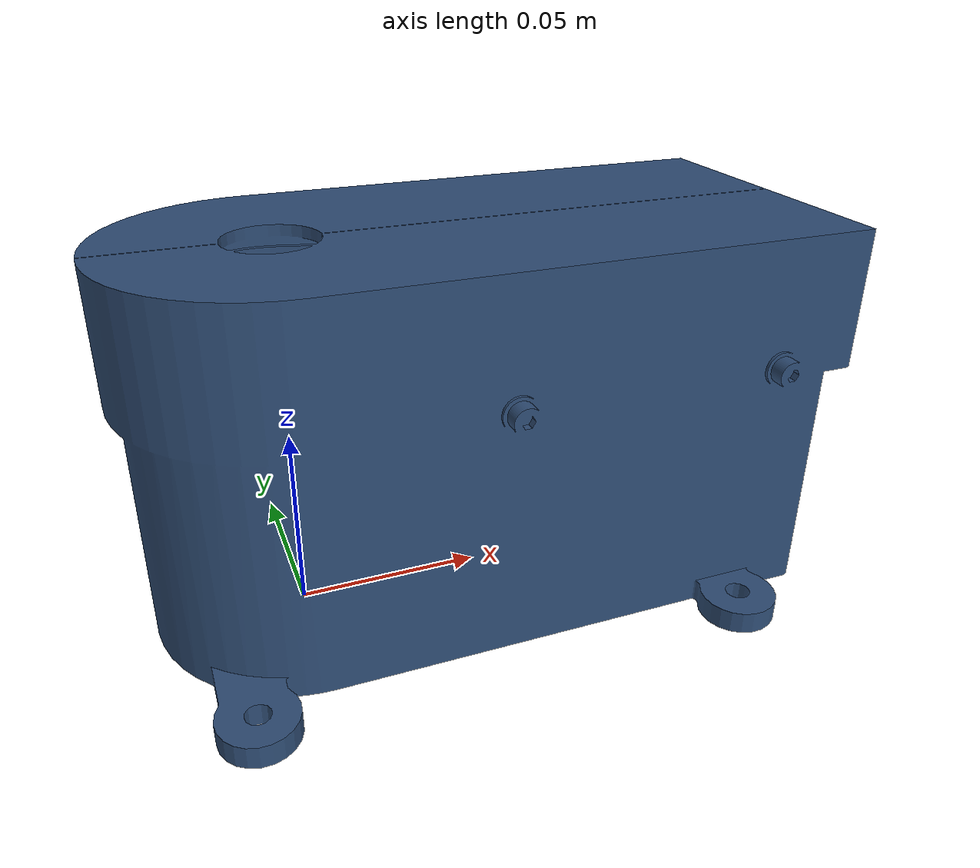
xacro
<?xml version="1.0"?>
<robot xmlns:xacro="http://www.ros.org/wiki/xacro">
  <!-- Stationary base and bench reference. Distances in meters; angles in radians. -->
  <!-- world: reference frame only; it has no visible shape. -->
  <link name="world" />
  <!-- base_link: a rigid assembly of parts. The mesh supplies its shape; visual is appearance, collision is contact geometry. -->
  <link name="base_link">
    <visual>
      <geometry>
        <mesh filename="package://robotic_arm_description/meshes/base_link.stl" />
      </geometry>
      <material name="base_link_color">
        <color rgba="0.18 0.30 0.46 1" />
      </material>
    </visual>
    <collision>
      <geometry>
        <mesh filename="package://robotic_arm_description/meshes/base_link.stl" />
      </geometry>
    </collision>
  </link>
  <!-- world_to_base: connects world to base_link. Origin locates the joint in the parent frame. -->
  <joint name="world_to_base" type="fixed">
    <parent link="world" />
    <child link="base_link" />
    <origin xyz="0 0 0" rpy="0 0 0" />
  </joint>
</robot>
